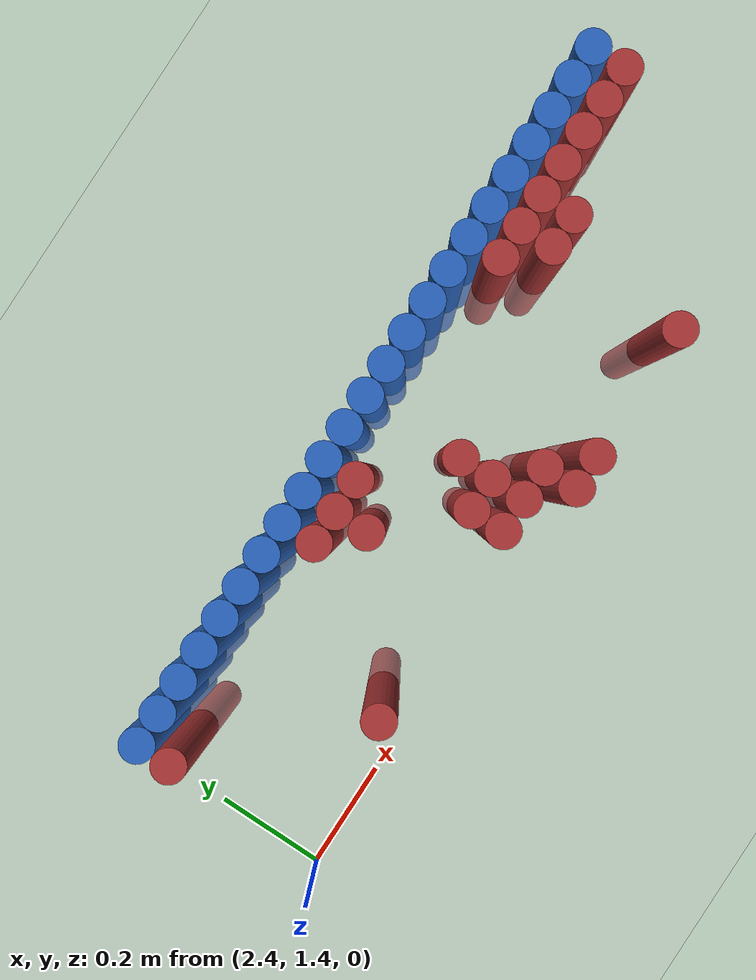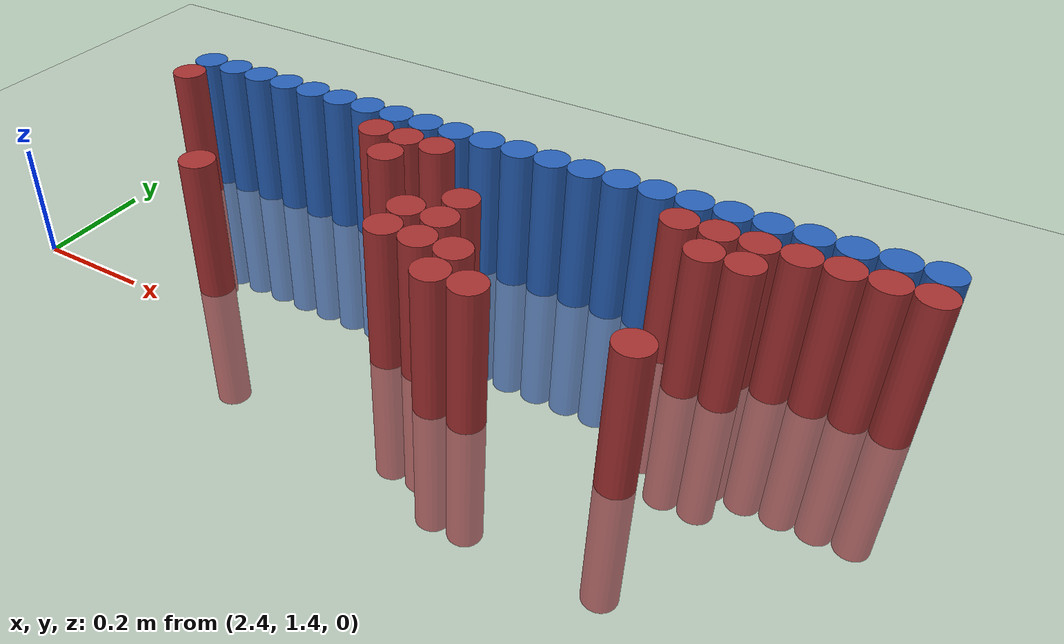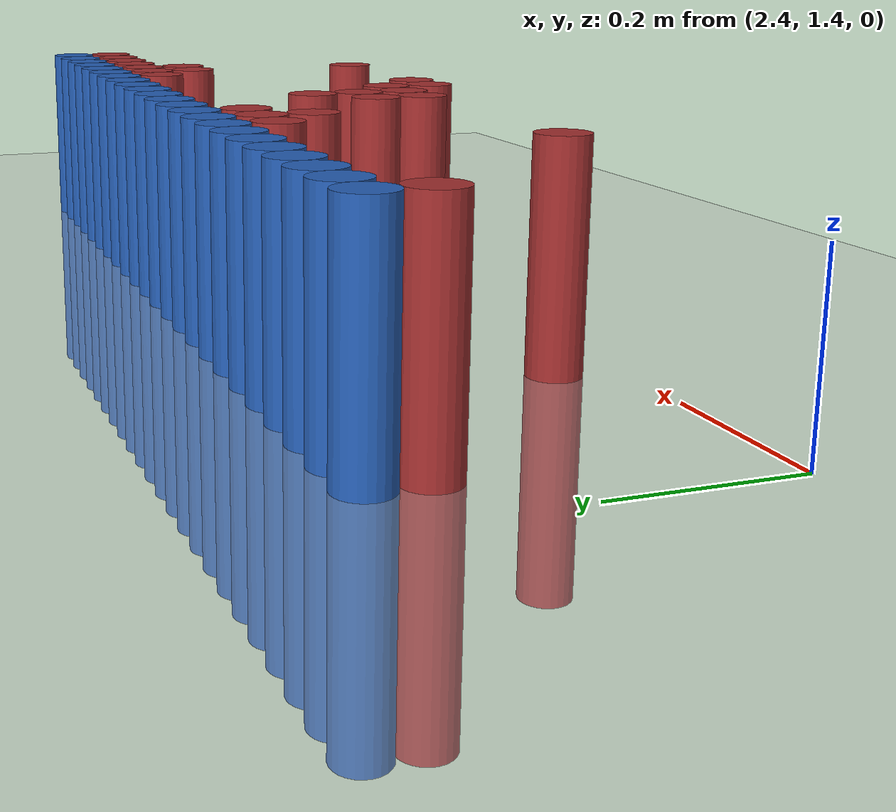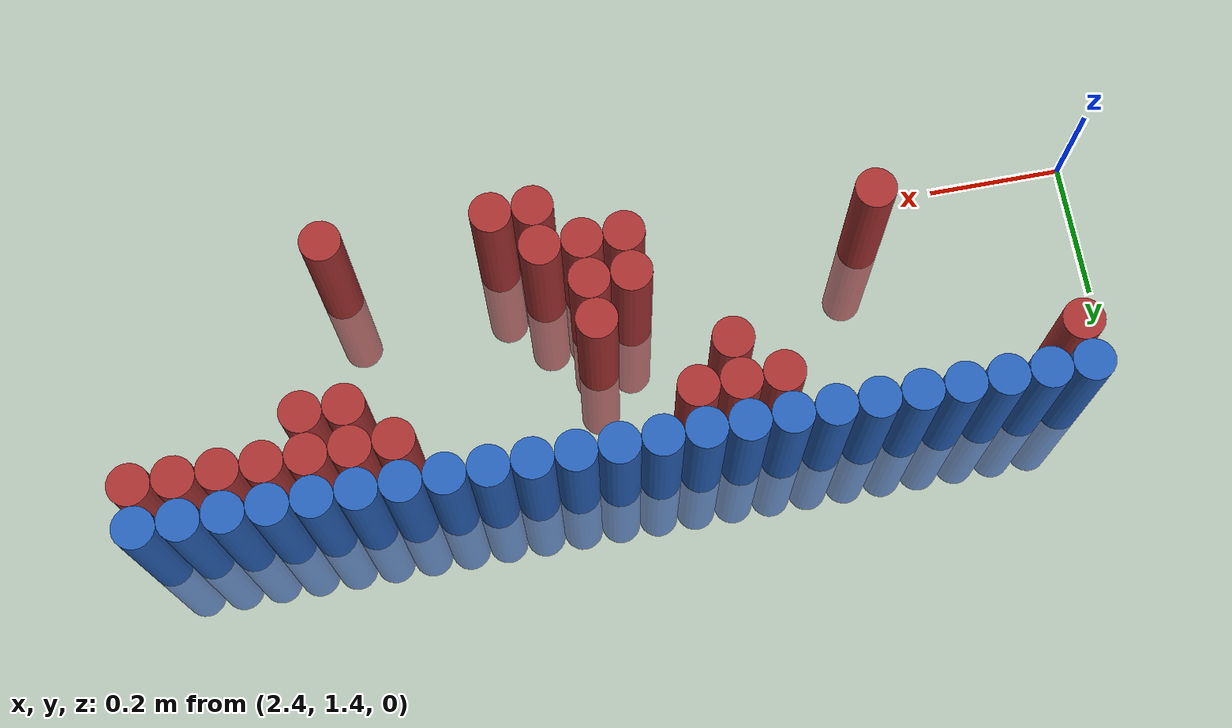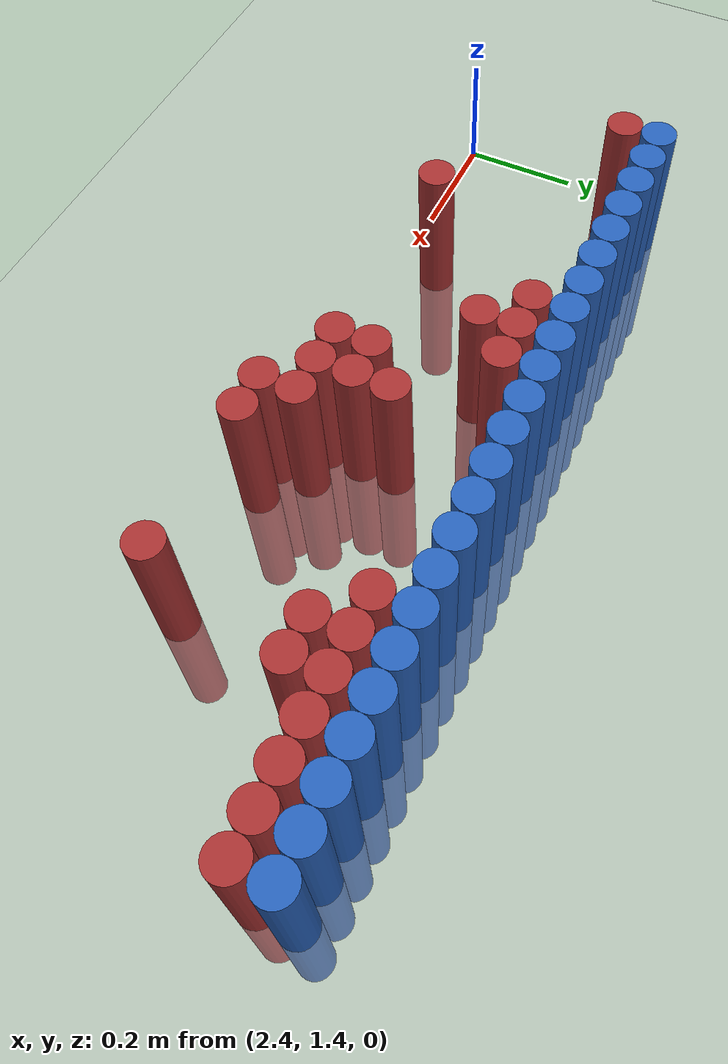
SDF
<sdf version="1.6">
 <world name="default">
  <model name="ground_plane">
   <static>1</static>
   <link name="link">
    <collision name="collision">
     <geometry><plane><normal>0 0 1</normal><size>100 100</size></plane></geometry>
     <surface><friction><ode><mu>100</mu><mu2>50</mu2></ode></friction></surface>
    </collision>
    <visual name="visual">
     <cast_shadows>0</cast_shadows>
     <geometry><plane><normal>0 0 1</normal><size>100 100</size></plane></geometry>
     <material>
      <script><uri>file://media/materials/scripts/gazebo.material</uri><name>Gazebo/Grey</name></script>
     </material>
    </visual>
   </link>
  </model>
  <model name="unit_cylinder_102">
   <static>1</static>
   <pose>2.490000 1.770000 0.000000 0.000000 0.000000 0.000000</pose>
   <link name="link">
    <inertial>
     <mass>1</mass>
     <inertia><ixx>0.145833</ixx><ixy>0</ixy><ixz>0</ixz><iyy>0.145833</iyy><iyz>0</iyz><izz>0.125</izz></inertia>
    </inertial>
    <collision name="collision">
     <geometry><cylinder><radius>0.030000</radius><length>0.5</length></cylinder></geometry>
    </collision>
    <visual name="visual">
     <geometry><cylinder><radius>0.030000</radius><length>0.5</length></cylinder></geometry>
     <material>
      <ambient>0.152000 0.379000 0.720000 1</ambient>
      <diffuse>0.152000 0.379000 0.720000 1</diffuse>
     </material>
     <material>
      <script><name>Gazebo/Grey</name><uri>file://media/materials/scripts/gazebo.material</uri></script>
     </material>
    </visual>
   </link>
  </model>
  <model name="unit_cylinder_103">
   <static>1</static>
   <pose>2.550000 1.770000 0.000000 0.000000 0.000000 0.000000</pose>
   <link name="link">
    <inertial>
     <mass>1</mass>
     <inertia><ixx>0.145833</ixx><ixy>0</ixy><ixz>0</ixz><iyy>0.145833</iyy><iyz>0</iyz><izz>0.125</izz></inertia>
    </inertial>
    <collision name="collision">
     <geometry><cylinder><radius>0.030000</radius><length>0.5</length></cylinder></geometry>
    </collision>
    <visual name="visual">
     <geometry><cylinder><radius>0.030000</radius><length>0.5</length></cylinder></geometry>
     <material>
      <ambient>0.152000 0.379000 0.720000 1</ambient>
      <diffuse>0.152000 0.379000 0.720000 1</diffuse>
     </material>
     <material>
      <script><name>Gazebo/Grey</name><uri>file://media/materials/scripts/gazebo.material</uri></script>
     </material>
    </visual>
   </link>
  </model>
  <model name="unit_cylinder_104">
   <static>1</static>
   <pose>2.610000 1.770000 0.000000 0.000000 0.000000 0.000000</pose>
   <link name="link">
    <inertial>
     <mass>1</mass>
     <inertia><ixx>0.145833</ixx><ixy>0</ixy><ixz>0</ixz><iyy>0.145833</iyy><iyz>0</iyz><izz>0.125</izz></inertia>
    </inertial>
    <collision name="collision">
     <geometry><cylinder><radius>0.030000</radius><length>0.5</length></cylinder></geometry>
    </collision>
    <visual name="visual">
     <geometry><cylinder><radius>0.030000</radius><length>0.5</length></cylinder></geometry>
     <material>
      <ambient>0.152000 0.379000 0.720000 1</ambient>
      <diffuse>0.152000 0.379000 0.720000 1</diffuse>
     </material>
     <material>
      <script><name>Gazebo/Grey</name><uri>file://media/materials/scripts/gazebo.material</uri></script>
     </material>
    </visual>
   </link>
  </model>
  <model name="unit_cylinder_105">
   <static>1</static>
   <pose>2.670000 1.770000 0.000000 0.000000 0.000000 0.000000</pose>
   <link name="link">
    <inertial>
     <mass>1</mass>
     <inertia><ixx>0.145833</ixx><ixy>0</ixy><ixz>0</ixz><iyy>0.145833</iyy><iyz>0</iyz><izz>0.125</izz></inertia>
    </inertial>
    <collision name="collision">
     <geometry><cylinder><radius>0.030000</radius><length>0.5</length></cylinder></geometry>
    </collision>
    <visual name="visual">
     <geometry><cylinder><radius>0.030000</radius><length>0.5</length></cylinder></geometry>
     <material>
      <ambient>0.152000 0.379000 0.720000 1</ambient>
      <diffuse>0.152000 0.379000 0.720000 1</diffuse>
     </material>
     <material>
      <script><name>Gazebo/Grey</name><uri>file://media/materials/scripts/gazebo.material</uri></script>
     </material>
    </visual>
   </link>
  </model>
  <model name="unit_cylinder_106">
   <static>1</static>
   <pose>2.730000 1.770000 0.000000 0.000000 0.000000 0.000000</pose>
   <link name="link">
    <inertial>
     <mass>1</mass>
     <inertia><ixx>0.145833</ixx><ixy>0</ixy><ixz>0</ixz><iyy>0.145833</iyy><iyz>0</iyz><izz>0.125</izz></inertia>
    </inertial>
    <collision name="collision">
     <geometry><cylinder><radius>0.030000</radius><length>0.5</length></cylinder></geometry>
    </collision>
    <visual name="visual">
     <geometry><cylinder><radius>0.030000</radius><length>0.5</length></cylinder></geometry>
     <material>
      <ambient>0.152000 0.379000 0.720000 1</ambient>
      <diffuse>0.152000 0.379000 0.720000 1</diffuse>
     </material>
     <material>
      <script><name>Gazebo/Grey</name><uri>file://media/materials/scripts/gazebo.material</uri></script>
     </material>
    </visual>
   </link>
  </model>
  <model name="unit_cylinder_107">
   <static>1</static>
   <pose>2.790000 1.770000 0.000000 0.000000 0.000000 0.000000</pose>
   <link name="link">
    <inertial>
     <mass>1</mass>
     <inertia><ixx>0.145833</ixx><ixy>0</ixy><ixz>0</ixz><iyy>0.145833</iyy><iyz>0</iyz><izz>0.125</izz></inertia>
    </inertial>
    <collision name="collision">
     <geometry><cylinder><radius>0.030000</radius><length>0.5</length></cylinder></geometry>
    </collision>
    <visual name="visual">
     <geometry><cylinder><radius>0.030000</radius><length>0.5</length></cylinder></geometry>
     <material>
      <ambient>0.152000 0.379000 0.720000 1</ambient>
      <diffuse>0.152000 0.379000 0.720000 1</diffuse>
     </material>
     <material>
      <script><name>Gazebo/Grey</name><uri>file://media/materials/scripts/gazebo.material</uri></script>
     </material>
    </visual>
   </link>
  </model>
  <model name="unit_cylinder_108">
   <static>1</static>
   <pose>2.850000 1.770000 0.000000 0.000000 0.000000 0.000000</pose>
   <link name="link">
    <inertial>
     <mass>1</mass>
     <inertia><ixx>0.145833</ixx><ixy>0</ixy><ixz>0</ixz><iyy>0.145833</iyy><iyz>0</iyz><izz>0.125</izz></inertia>
    </inertial>
    <collision name="collision">
     <geometry><cylinder><radius>0.030000</radius><length>0.5</length></cylinder></geometry>
    </collision>
    <visual name="visual">
     <geometry><cylinder><radius>0.030000</radius><length>0.5</length></cylinder></geometry>
     <material>
      <ambient>0.152000 0.379000 0.720000 1</ambient>
      <diffuse>0.152000 0.379000 0.720000 1</diffuse>
     </material>
     <material>
      <script><name>Gazebo/Grey</name><uri>file://media/materials/scripts/gazebo.material</uri></script>
     </material>
    </visual>
   </link>
  </model>
  <model name="unit_cylinder_109">
   <static>1</static>
   <pose>2.910000 1.770000 0.000000 0.000000 0.000000 0.000000</pose>
   <link name="link">
    <inertial>
     <mass>1</mass>
     <inertia><ixx>0.145833</ixx><ixy>0</ixy><ixz>0</ixz><iyy>0.145833</iyy><iyz>0</iyz><izz>0.125</izz></inertia>
    </inertial>
    <collision name="collision">
     <geometry><cylinder><radius>0.030000</radius><length>0.5</length></cylinder></geometry>
    </collision>
    <visual name="visual">
     <geometry><cylinder><radius>0.030000</radius><length>0.5</length></cylinder></geometry>
     <material>
      <ambient>0.152000 0.379000 0.720000 1</ambient>
      <diffuse>0.152000 0.379000 0.720000 1</diffuse>
     </material>
     <material>
      <script><name>Gazebo/Grey</name><uri>file://media/materials/scripts/gazebo.material</uri></script>
     </material>
    </visual>
   </link>
  </model>
  <model name="unit_cylinder_110">
   <static>1</static>
   <pose>2.970000 1.770000 0.000000 0.000000 0.000000 0.000000</pose>
   <link name="link">
    <inertial>
     <mass>1</mass>
     <inertia><ixx>0.145833</ixx><ixy>0</ixy><ixz>0</ixz><iyy>0.145833</iyy><iyz>0</iyz><izz>0.125</izz></inertia>
    </inertial>
    <collision name="collision">
     <geometry><cylinder><radius>0.030000</radius><length>0.5</length></cylinder></geometry>
    </collision>
    <visual name="visual">
     <geometry><cylinder><radius>0.030000</radius><length>0.5</length></cylinder></geometry>
     <material>
      <ambient>0.152000 0.379000 0.720000 1</ambient>
      <diffuse>0.152000 0.379000 0.720000 1</diffuse>
     </material>
     <material>
      <script><name>Gazebo/Grey</name><uri>file://media/materials/scripts/gazebo.material</uri></script>
     </material>
    </visual>
   </link>
  </model>
  <model name="unit_cylinder_111">
   <static>1</static>
   <pose>3.030000 1.770000 0.000000 0.000000 0.000000 0.000000</pose>
   <link name="link">
    <inertial>
     <mass>1</mass>
     <inertia><ixx>0.145833</ixx><ixy>0</ixy><ixz>0</ixz><iyy>0.145833</iyy><iyz>0</iyz><izz>0.125</izz></inertia>
    </inertial>
    <collision name="collision">
     <geometry><cylinder><radius>0.030000</radius><length>0.5</length></cylinder></geometry>
    </collision>
    <visual name="visual">
     <geometry><cylinder><radius>0.030000</radius><length>0.5</length></cylinder></geometry>
     <material>
      <ambient>0.152000 0.379000 0.720000 1</ambient>
      <diffuse>0.152000 0.379000 0.720000 1</diffuse>
     </material>
     <material>
      <script><name>Gazebo/Grey</name><uri>file://media/materials/scripts/gazebo.material</uri></script>
     </material>
    </visual>
   </link>
  </model>
  <model name="unit_cylinder_112">
   <static>1</static>
   <pose>3.090000 1.770000 0.000000 0.000000 0.000000 0.000000</pose>
   <link name="link">
    <inertial>
     <mass>1</mass>
     <inertia><ixx>0.145833</ixx><ixy>0</ixy><ixz>0</ixz><iyy>0.145833</iyy><iyz>0</iyz><izz>0.125</izz></inertia>
    </inertial>
    <collision name="collision">
     <geometry><cylinder><radius>0.030000</radius><length>0.5</length></cylinder></geometry>
    </collision>
    <visual name="visual">
     <geometry><cylinder><radius>0.030000</radius><length>0.5</length></cylinder></geometry>
     <material>
      <ambient>0.152000 0.379000 0.720000 1</ambient>
      <diffuse>0.152000 0.379000 0.720000 1</diffuse>
     </material>
     <material>
      <script><name>Gazebo/Grey</name><uri>file://media/materials/scripts/gazebo.material</uri></script>
     </material>
    </visual>
   </link>
  </model>
  <model name="unit_cylinder_113">
   <static>1</static>
   <pose>3.150000 1.770000 0.000000 0.000000 0.000000 0.000000</pose>
   <link name="link">
    <inertial>
     <mass>1</mass>
     <inertia><ixx>0.145833</ixx><ixy>0</ixy><ixz>0</ixz><iyy>0.145833</iyy><iyz>0</iyz><izz>0.125</izz></inertia>
    </inertial>
    <collision name="collision">
     <geometry><cylinder><radius>0.030000</radius><length>0.5</length></cylinder></geometry>
    </collision>
    <visual name="visual">
     <geometry><cylinder><radius>0.030000</radius><length>0.5</length></cylinder></geometry>
     <material>
      <ambient>0.152000 0.379000 0.720000 1</ambient>
      <diffuse>0.152000 0.379000 0.720000 1</diffuse>
     </material>
     <material>
      <script><name>Gazebo/Grey</name><uri>file://media/materials/scripts/gazebo.material</uri></script>
     </material>
    </visual>
   </link>
  </model>
  <model name="unit_cylinder_114">
   <static>1</static>
   <pose>3.210000 1.770000 0.000000 0.000000 0.000000 0.000000</pose>
   <link name="link">
    <inertial>
     <mass>1</mass>
     <inertia><ixx>0.145833</ixx><ixy>0</ixy><ixz>0</ixz><iyy>0.145833</iyy><iyz>0</iyz><izz>0.125</izz></inertia>
    </inertial>
    <collision name="collision">
     <geometry><cylinder><radius>0.030000</radius><length>0.5</length></cylinder></geometry>
    </collision>
    <visual name="visual">
     <geometry><cylinder><radius>0.030000</radius><length>0.5</length></cylinder></geometry>
     <material>
      <ambient>0.152000 0.379000 0.720000 1</ambient>
      <diffuse>0.152000 0.379000 0.720000 1</diffuse>
     </material>
     <material>
      <script><name>Gazebo/Grey</name><uri>file://media/materials/scripts/gazebo.material</uri></script>
     </material>
    </visual>
   </link>
  </model>
  <model name="unit_cylinder_115">
   <static>1</static>
   <pose>3.270000 1.770000 0.000000 0.000000 0.000000 0.000000</pose>
   <link name="link">
    <inertial>
     <mass>1</mass>
     <inertia><ixx>0.145833</ixx><ixy>0</ixy><ixz>0</ixz><iyy>0.145833</iyy><iyz>0</iyz><izz>0.125</izz></inertia>
    </inertial>
    <collision name="collision">
     <geometry><cylinder><radius>0.030000</radius><length>0.5</length></cylinder></geometry>
    </collision>
    <visual name="visual">
     <geometry><cylinder><radius>0.030000</radius><length>0.5</length></cylinder></geometry>
     <material>
      <ambient>0.152000 0.379000 0.720000 1</ambient>
      <diffuse>0.152000 0.379000 0.720000 1</diffuse>
     </material>
     <material>
      <script><name>Gazebo/Grey</name><uri>file://media/materials/scripts/gazebo.material</uri></script>
     </material>
    </visual>
   </link>
  </model>
  <model name="unit_cylinder_116">
   <static>1</static>
   <pose>3.330000 1.770000 0.000000 0.000000 0.000000 0.000000</pose>
   <link name="link">
    <inertial>
     <mass>1</mass>
     <inertia><ixx>0.145833</ixx><ixy>0</ixy><ixz>0</ixz><iyy>0.145833</iyy><iyz>0</iyz><izz>0.125</izz></inertia>
    </inertial>
    <collision name="collision">
     <geometry><cylinder><radius>0.030000</radius><length>0.5</length></cylinder></geometry>
    </collision>
    <visual name="visual">
     <geometry><cylinder><radius>0.030000</radius><length>0.5</length></cylinder></geometry>
     <material>
      <ambient>0.152000 0.379000 0.720000 1</ambient>
      <diffuse>0.152000 0.379000 0.720000 1</diffuse>
     </material>
     <material>
      <script><name>Gazebo/Grey</name><uri>file://media/materials/scripts/gazebo.material</uri></script>
     </material>
    </visual>
   </link>
  </model>
  <model name="unit_cylinder_117">
   <static>1</static>
   <pose>3.390000 1.770000 0.000000 0.000000 0.000000 0.000000</pose>
   <link name="link">
    <inertial>
     <mass>1</mass>
     <inertia><ixx>0.145833</ixx><ixy>0</ixy><ixz>0</ixz><iyy>0.145833</iyy><iyz>0</iyz><izz>0.125</izz></inertia>
    </inertial>
    <collision name="collision">
     <geometry><cylinder><radius>0.030000</radius><length>0.5</length></cylinder></geometry>
    </collision>
    <visual name="visual">
     <geometry><cylinder><radius>0.030000</radius><length>0.5</length></cylinder></geometry>
     <material>
      <ambient>0.152000 0.379000 0.720000 1</ambient>
      <diffuse>0.152000 0.379000 0.720000 1</diffuse>
     </material>
     <material>
      <script><name>Gazebo/Grey</name><uri>file://media/materials/scripts/gazebo.material</uri></script>
     </material>
    </visual>
   </link>
  </model>
  <model name="unit_cylinder_118">
   <static>1</static>
   <pose>3.450000 1.770000 0.000000 0.000000 0.000000 0.000000</pose>
   <link name="link">
    <inertial>
     <mass>1</mass>
     <inertia><ixx>0.145833</ixx><ixy>0</ixy><ixz>0</ixz><iyy>0.145833</iyy><iyz>0</iyz><izz>0.125</izz></inertia>
    </inertial>
    <collision name="collision">
     <geometry><cylinder><radius>0.030000</radius><length>0.5</length></cylinder></geometry>
    </collision>
    <visual name="visual">
     <geometry><cylinder><radius>0.030000</radius><length>0.5</length></cylinder></geometry>
     <material>
      <ambient>0.152000 0.379000 0.720000 1</ambient>
      <diffuse>0.152000 0.379000 0.720000 1</diffuse>
     </material>
     <material>
      <script><name>Gazebo/Grey</name><uri>file://media/materials/scripts/gazebo.material</uri></script>
     </material>
    </visual>
   </link>
  </model>
  <model name="unit_cylinder_119">
   <static>1</static>
   <pose>3.510000 1.770000 0.000000 0.000000 0.000000 0.000000</pose>
   <link name="link">
    <inertial>
     <mass>1</mass>
     <inertia><ixx>0.145833</ixx><ixy>0</ixy><ixz>0</ixz><iyy>0.145833</iyy><iyz>0</iyz><izz>0.125</izz></inertia>
    </inertial>
    <collision name="collision">
     <geometry><cylinder><radius>0.030000</radius><length>0.5</length></cylinder></geometry>
    </collision>
    <visual name="visual">
     <geometry><cylinder><radius>0.030000</radius><length>0.5</length></cylinder></geometry>
     <material>
      <ambient>0.152000 0.379000 0.720000 1</ambient>
      <diffuse>0.152000 0.379000 0.720000 1</diffuse>
     </material>
     <material>
      <script><name>Gazebo/Grey</name><uri>file://media/materials/scripts/gazebo.material</uri></script>
     </material>
    </visual>
   </link>
  </model>
  <model name="unit_cylinder_120">
   <static>1</static>
   <pose>3.570000 1.770000 0.000000 0.000000 0.000000 0.000000</pose>
   <link name="link">
    <inertial>
     <mass>1</mass>
     <inertia><ixx>0.145833</ixx><ixy>0</ixy><ixz>0</ixz><iyy>0.145833</iyy><iyz>0</iyz><izz>0.125</izz></inertia>
    </inertial>
    <collision name="collision">
     <geometry><cylinder><radius>0.030000</radius><length>0.5</length></cylinder></geometry>
    </collision>
    <visual name="visual">
     <geometry><cylinder><radius>0.030000</radius><length>0.5</length></cylinder></geometry>
     <material>
      <ambient>0.152000 0.379000 0.720000 1</ambient>
      <diffuse>0.152000 0.379000 0.720000 1</diffuse>
     </material>
     <material>
      <script><name>Gazebo/Grey</name><uri>file://media/materials/scripts/gazebo.material</uri></script>
     </material>
    </visual>
   </link>
  </model>
  <model name="unit_cylinder_121">
   <static>1</static>
   <pose>3.630000 1.770000 0.000000 0.000000 0.000000 0.000000</pose>
   <link name="link">
    <inertial>
     <mass>1</mass>
     <inertia><ixx>0.145833</ixx><ixy>0</ixy><ixz>0</ixz><iyy>0.145833</iyy><iyz>0</iyz><izz>0.125</izz></inertia>
    </inertial>
    <collision name="collision">
     <geometry><cylinder><radius>0.030000</radius><length>0.5</length></cylinder></geometry>
    </collision>
    <visual name="visual">
     <geometry><cylinder><radius>0.030000</radius><length>0.5</length></cylinder></geometry>
     <material>
      <ambient>0.152000 0.379000 0.720000 1</ambient>
      <diffuse>0.152000 0.379000 0.720000 1</diffuse>
     </material>
     <material>
      <script><name>Gazebo/Grey</name><uri>file://media/materials/scripts/gazebo.material</uri></script>
     </material>
    </visual>
   </link>
  </model>
  <model name="unit_cylinder_122">
   <static>1</static>
   <pose>3.690000 1.770000 0.000000 0.000000 0.000000 0.000000</pose>
   <link name="link">
    <inertial>
     <mass>1</mass>
     <inertia><ixx>0.145833</ixx><ixy>0</ixy><ixz>0</ixz><iyy>0.145833</iyy><iyz>0</iyz><izz>0.125</izz></inertia>
    </inertial>
    <collision name="collision">
     <geometry><cylinder><radius>0.030000</radius><length>0.5</length></cylinder></geometry>
    </collision>
    <visual name="visual">
     <geometry><cylinder><radius>0.030000</radius><length>0.5</length></cylinder></geometry>
     <material>
      <ambient>0.152000 0.379000 0.720000 1</ambient>
      <diffuse>0.152000 0.379000 0.720000 1</diffuse>
     </material>
     <material>
      <script><name>Gazebo/Grey</name><uri>file://media/materials/scripts/gazebo.material</uri></script>
     </material>
    </visual>
   </link>
  </model>
  <model name="unit_cylinder_123">
   <static>1</static>
   <pose>3.750000 1.770000 0.000000 0.000000 0.000000 0.000000</pose>
   <link name="link">
    <inertial>
     <mass>1</mass>
     <inertia><ixx>0.145833</ixx><ixy>0</ixy><ixz>0</ixz><iyy>0.145833</iyy><iyz>0</iyz><izz>0.125</izz></inertia>
    </inertial>
    <collision name="collision">
     <geometry><cylinder><radius>0.030000</radius><length>0.5</length></cylinder></geometry>
    </collision>
    <visual name="visual">
     <geometry><cylinder><radius>0.030000</radius><length>0.5</length></cylinder></geometry>
     <material>
      <ambient>0.152000 0.379000 0.720000 1</ambient>
      <diffuse>0.152000 0.379000 0.720000 1</diffuse>
     </material>
     <material>
      <script><name>Gazebo/Grey</name><uri>file://media/materials/scripts/gazebo.material</uri></script>
     </material>
    </visual>
   </link>
  </model>
  <model name="unit_cylinder_124">
   <static>1</static>
   <pose>3.810000 1.770000 0.000000 0.000000 0.000000 0.000000</pose>
   <link name="link">
    <inertial>
     <mass>1</mass>
     <inertia><ixx>0.145833</ixx><ixy>0</ixy><ixz>0</ixz><iyy>0.145833</iyy><iyz>0</iyz><izz>0.125</izz></inertia>
    </inertial>
    <collision name="collision">
     <geometry><cylinder><radius>0.030000</radius><length>0.5</length></cylinder></geometry>
    </collision>
    <visual name="visual">
     <geometry><cylinder><radius>0.030000</radius><length>0.5</length></cylinder></geometry>
     <material>
      <ambient>0.152000 0.379000 0.720000 1</ambient>
      <diffuse>0.152000 0.379000 0.720000 1</diffuse>
     </material>
     <material>
      <script><name>Gazebo/Grey</name><uri>file://media/materials/scripts/gazebo.material</uri></script>
     </material>
    </visual>
   </link>
  </model>
  <model name="unit_cylinder_128">
   <static>1</static>
   <pose>2.490000 1.710000 0.000000 0.000000 0.000000 0.000000</pose>
   <link name="link">
    <inertial>
     <mass>1</mass>
     <inertia><ixx>0.145833</ixx><ixy>0</ixy><ixz>0</ixz><iyy>0.145833</iyy><iyz>0</iyz><izz>0.125</izz></inertia>
    </inertial>
    <collision name="collision">
     <geometry><cylinder><radius>0.030000</radius><length>0.5</length></cylinder></geometry>
    </collision>
    <visual name="visual">
     <geometry><cylinder><radius>0.030000</radius><length>0.5</length></cylinder></geometry>
     <material>
      <ambient>0.648000 0.192000 0.192000 1</ambient>
      <diffuse>0.648000 0.192000 0.192000 1</diffuse>
     </material>
     <material>
      <script><name>Gazebo/Grey</name><uri>file://media/materials/scripts/gazebo.material</uri></script>
     </material>
    </visual>
   </link>
  </model>
  <model name="unit_cylinder_129">
   <static>1</static>
   <pose>2.910000 1.710000 0.000000 0.000000 0.000000 0.000000</pose>
   <link name="link">
    <inertial>
     <mass>1</mass>
     <inertia><ixx>0.145833</ixx><ixy>0</ixy><ixz>0</ixz><iyy>0.145833</iyy><iyz>0</iyz><izz>0.125</izz></inertia>
    </inertial>
    <collision name="collision">
     <geometry><cylinder><radius>0.030000</radius><length>0.5</length></cylinder></geometry>
    </collision>
    <visual name="visual">
     <geometry><cylinder><radius>0.030000</radius><length>0.5</length></cylinder></geometry>
     <material>
      <ambient>0.648000 0.192000 0.192000 1</ambient>
      <diffuse>0.648000 0.192000 0.192000 1</diffuse>
     </material>
     <material>
      <script><name>Gazebo/Grey</name><uri>file://media/materials/scripts/gazebo.material</uri></script>
     </material>
    </visual>
   </link>
  </model>
  <model name="unit_cylinder_130">
   <static>1</static>
   <pose>2.970000 1.710000 0.000000 0.000000 0.000000 0.000000</pose>
   <link name="link">
    <inertial>
     <mass>1</mass>
     <inertia><ixx>0.145833</ixx><ixy>0</ixy><ixz>0</ixz><iyy>0.145833</iyy><iyz>0</iyz><izz>0.125</izz></inertia>
    </inertial>
    <collision name="collision">
     <geometry><cylinder><radius>0.030000</radius><length>0.5</length></cylinder></geometry>
    </collision>
    <visual name="visual">
     <geometry><cylinder><radius>0.030000</radius><length>0.5</length></cylinder></geometry>
     <material>
      <ambient>0.648000 0.192000 0.192000 1</ambient>
      <diffuse>0.648000 0.192000 0.192000 1</diffuse>
     </material>
     <material>
      <script><name>Gazebo/Grey</name><uri>file://media/materials/scripts/gazebo.material</uri></script>
     </material>
    </visual>
   </link>
  </model>
  <model name="unit_cylinder_131">
   <static>1</static>
   <pose>3.030000 1.710000 0.000000 0.000000 0.000000 0.000000</pose>
   <link name="link">
    <inertial>
     <mass>1</mass>
     <inertia><ixx>0.145833</ixx><ixy>0</ixy><ixz>0</ixz><iyy>0.145833</iyy><iyz>0</iyz><izz>0.125</izz></inertia>
    </inertial>
    <collision name="collision">
     <geometry><cylinder><radius>0.030000</radius><length>0.5</length></cylinder></geometry>
    </collision>
    <visual name="visual">
     <geometry><cylinder><radius>0.030000</radius><length>0.5</length></cylinder></geometry>
     <material>
      <ambient>0.648000 0.192000 0.192000 1</ambient>
      <diffuse>0.648000 0.192000 0.192000 1</diffuse>
     </material>
     <material>
      <script><name>Gazebo/Grey</name><uri>file://media/materials/scripts/gazebo.material</uri></script>
     </material>
    </visual>
   </link>
  </model>
  <model name="unit_cylinder_132">
   <static>1</static>
   <pose>3.450000 1.710000 0.000000 0.000000 0.000000 0.000000</pose>
   <link name="link">
    <inertial>
     <mass>1</mass>
     <inertia><ixx>0.145833</ixx><ixy>0</ixy><ixz>0</ixz><iyy>0.145833</iyy><iyz>0</iyz><izz>0.125</izz></inertia>
    </inertial>
    <collision name="collision">
     <geometry><cylinder><radius>0.030000</radius><length>0.5</length></cylinder></geometry>
    </collision>
    <visual name="visual">
     <geometry><cylinder><radius>0.030000</radius><length>0.5</length></cylinder></geometry>
     <material>
      <ambient>0.648000 0.192000 0.192000 1</ambient>
      <diffuse>0.648000 0.192000 0.192000 1</diffuse>
     </material>
     <material>
      <script><name>Gazebo/Grey</name><uri>file://media/materials/scripts/gazebo.material</uri></script>
     </material>
    </visual>
   </link>
  </model>
  <model name="unit_cylinder_133">
   <static>1</static>
   <pose>3.510000 1.710000 0.000000 0.000000 0.000000 0.000000</pose>
   <link name="link">
    <inertial>
     <mass>1</mass>
     <inertia><ixx>0.145833</ixx><ixy>0</ixy><ixz>0</ixz><iyy>0.145833</iyy><iyz>0</iyz><izz>0.125</izz></inertia>
    </inertial>
    <collision name="collision">
     <geometry><cylinder><radius>0.030000</radius><length>0.5</length></cylinder></geometry>
    </collision>
    <visual name="visual">
     <geometry><cylinder><radius>0.030000</radius><length>0.5</length></cylinder></geometry>
     <material>
      <ambient>0.648000 0.192000 0.192000 1</ambient>
      <diffuse>0.648000 0.192000 0.192000 1</diffuse>
     </material>
     <material>
      <script><name>Gazebo/Grey</name><uri>file://media/materials/scripts/gazebo.material</uri></script>
     </material>
    </visual>
   </link>
  </model>
  <model name="unit_cylinder_134">
   <static>1</static>
   <pose>3.570000 1.710000 0.000000 0.000000 0.000000 0.000000</pose>
   <link name="link">
    <inertial>
     <mass>1</mass>
     <inertia><ixx>0.145833</ixx><ixy>0</ixy><ixz>0</ixz><iyy>0.145833</iyy><iyz>0</iyz><izz>0.125</izz></inertia>
    </inertial>
    <collision name="collision">
     <geometry><cylinder><radius>0.030000</radius><length>0.5</length></cylinder></geometry>
    </collision>
    <visual name="visual">
     <geometry><cylinder><radius>0.030000</radius><length>0.5</length></cylinder></geometry>
     <material>
      <ambient>0.648000 0.192000 0.192000 1</ambient>
      <diffuse>0.648000 0.192000 0.192000 1</diffuse>
     </material>
     <material>
      <script><name>Gazebo/Grey</name><uri>file://media/materials/scripts/gazebo.material</uri></script>
     </material>
    </visual>
   </link>
  </model>
  <model name="unit_cylinder_135">
   <static>1</static>
   <pose>3.630000 1.710000 0.000000 0.000000 0.000000 0.000000</pose>
   <link name="link">
    <inertial>
     <mass>1</mass>
     <inertia><ixx>0.145833</ixx><ixy>0</ixy><ixz>0</ixz><iyy>0.145833</iyy><iyz>0</iyz><izz>0.125</izz></inertia>
    </inertial>
    <collision name="collision">
     <geometry><cylinder><radius>0.030000</radius><length>0.5</length></cylinder></geometry>
    </collision>
    <visual name="visual">
     <geometry><cylinder><radius>0.030000</radius><length>0.5</length></cylinder></geometry>
     <material>
      <ambient>0.648000 0.192000 0.192000 1</ambient>
      <diffuse>0.648000 0.192000 0.192000 1</diffuse>
     </material>
     <material>
      <script><name>Gazebo/Grey</name><uri>file://media/materials/scripts/gazebo.material</uri></script>
     </material>
    </visual>
   </link>
  </model>
  <model name="unit_cylinder_136">
   <static>1</static>
   <pose>3.690000 1.710000 0.000000 0.000000 0.000000 0.000000</pose>
   <link name="link">
    <inertial>
     <mass>1</mass>
     <inertia><ixx>0.145833</ixx><ixy>0</ixy><ixz>0</ixz><iyy>0.145833</iyy><iyz>0</iyz><izz>0.125</izz></inertia>
    </inertial>
    <collision name="collision">
     <geometry><cylinder><radius>0.030000</radius><length>0.5</length></cylinder></geometry>
    </collision>
    <visual name="visual">
     <geometry><cylinder><radius>0.030000</radius><length>0.5</length></cylinder></geometry>
     <material>
      <ambient>0.648000 0.192000 0.192000 1</ambient>
      <diffuse>0.648000 0.192000 0.192000 1</diffuse>
     </material>
     <material>
      <script><name>Gazebo/Grey</name><uri>file://media/materials/scripts/gazebo.material</uri></script>
     </material>
    </visual>
   </link>
  </model>
  <model name="unit_cylinder_137">
   <static>1</static>
   <pose>3.750000 1.710000 0.000000 0.000000 0.000000 0.000000</pose>
   <link name="link">
    <inertial>
     <mass>1</mass>
     <inertia><ixx>0.145833</ixx><ixy>0</ixy><ixz>0</ixz><iyy>0.145833</iyy><iyz>0</iyz><izz>0.125</izz></inertia>
    </inertial>
    <collision name="collision">
     <geometry><cylinder><radius>0.030000</radius><length>0.5</length></cylinder></geometry>
    </collision>
    <visual name="visual">
     <geometry><cylinder><radius>0.030000</radius><length>0.5</length></cylinder></geometry>
     <material>
      <ambient>0.648000 0.192000 0.192000 1</ambient>
      <diffuse>0.648000 0.192000 0.192000 1</diffuse>
     </material>
     <material>
      <script><name>Gazebo/Grey</name><uri>file://media/materials/scripts/gazebo.material</uri></script>
     </material>
    </visual>
   </link>
  </model>
  <model name="unit_cylinder_138">
   <static>1</static>
   <pose>3.810000 1.710000 0.000000 0.000000 0.000000 0.000000</pose>
   <link name="link">
    <inertial>
     <mass>1</mass>
     <inertia><ixx>0.145833</ixx><ixy>0</ixy><ixz>0</ixz><iyy>0.145833</iyy><iyz>0</iyz><izz>0.125</izz></inertia>
    </inertial>
    <collision name="collision">
     <geometry><cylinder><radius>0.030000</radius><length>0.5</length></cylinder></geometry>
    </collision>
    <visual name="visual">
     <geometry><cylinder><radius>0.030000</radius><length>0.5</length></cylinder></geometry>
     <material>
      <ambient>0.648000 0.192000 0.192000 1</ambient>
      <diffuse>0.648000 0.192000 0.192000 1</diffuse>
     </material>
     <material>
      <script><name>Gazebo/Grey</name><uri>file://media/materials/scripts/gazebo.material</uri></script>
     </material>
    </visual>
   </link>
  </model>
  <model name="unit_cylinder_141">
   <static>1</static>
   <pose>2.970000 1.650000 0.000000 0.000000 0.000000 0.000000</pose>
   <link name="link">
    <inertial>
     <mass>1</mass>
     <inertia><ixx>0.145833</ixx><ixy>0</ixy><ixz>0</ixz><iyy>0.145833</iyy><iyz>0</iyz><izz>0.125</izz></inertia>
    </inertial>
    <collision name="collision">
     <geometry><cylinder><radius>0.030000</radius><length>0.5</length></cylinder></geometry>
    </collision>
    <visual name="visual">
     <geometry><cylinder><radius>0.030000</radius><length>0.5</length></cylinder></geometry>
     <material>
      <ambient>0.648000 0.192000 0.192000 1</ambient>
      <diffuse>0.648000 0.192000 0.192000 1</diffuse>
     </material>
     <material>
      <script><name>Gazebo/Grey</name><uri>file://media/materials/scripts/gazebo.material</uri></script>
     </material>
    </visual>
   </link>
  </model>
  <model name="unit_cylinder_142">
   <static>1</static>
   <pose>3.510000 1.650000 0.000000 0.000000 0.000000 0.000000</pose>
   <link name="link">
    <inertial>
     <mass>1</mass>
     <inertia><ixx>0.145833</ixx><ixy>0</ixy><ixz>0</ixz><iyy>0.145833</iyy><iyz>0</iyz><izz>0.125</izz></inertia>
    </inertial>
    <collision name="collision">
     <geometry><cylinder><radius>0.030000</radius><length>0.5</length></cylinder></geometry>
    </collision>
    <visual name="visual">
     <geometry><cylinder><radius>0.030000</radius><length>0.5</length></cylinder></geometry>
     <material>
      <ambient>0.648000 0.192000 0.192000 1</ambient>
      <diffuse>0.648000 0.192000 0.192000 1</diffuse>
     </material>
     <material>
      <script><name>Gazebo/Grey</name><uri>file://media/materials/scripts/gazebo.material</uri></script>
     </material>
    </visual>
   </link>
  </model>
  <model name="unit_cylinder_143">
   <static>1</static>
   <pose>3.570000 1.650000 0.000000 0.000000 0.000000 0.000000</pose>
   <link name="link">
    <inertial>
     <mass>1</mass>
     <inertia><ixx>0.145833</ixx><ixy>0</ixy><ixz>0</ixz><iyy>0.145833</iyy><iyz>0</iyz><izz>0.125</izz></inertia>
    </inertial>
    <collision name="collision">
     <geometry><cylinder><radius>0.030000</radius><length>0.5</length></cylinder></geometry>
    </collision>
    <visual name="visual">
     <geometry><cylinder><radius>0.030000</radius><length>0.5</length></cylinder></geometry>
     <material>
      <ambient>0.648000 0.192000 0.192000 1</ambient>
      <diffuse>0.648000 0.192000 0.192000 1</diffuse>
     </material>
     <material>
      <script><name>Gazebo/Grey</name><uri>file://media/materials/scripts/gazebo.material</uri></script>
     </material>
    </visual>
   </link>
  </model>
  <model name="unit_cylinder_146">
   <static>1</static>
   <pose>3.150000 1.590000 0.000000 0.000000 0.000000 0.000000</pose>
   <link name="link">
    <inertial>
     <mass>1</mass>
     <inertia><ixx>0.145833</ixx><ixy>0</ixy><ixz>0</ixz><iyy>0.145833</iyy><iyz>0</iyz><izz>0.125</izz></inertia>
    </inertial>
    <collision name="collision">
     <geometry><cylinder><radius>0.030000</radius><length>0.5</length></cylinder></geometry>
    </collision>
    <visual name="visual">
     <geometry><cylinder><radius>0.030000</radius><length>0.5</length></cylinder></geometry>
     <material>
      <ambient>0.648000 0.192000 0.192000 1</ambient>
      <diffuse>0.648000 0.192000 0.192000 1</diffuse>
     </material>
     <material>
      <script><name>Gazebo/Grey</name><uri>file://media/materials/scripts/gazebo.material</uri></script>
     </material>
    </visual>
   </link>
  </model>
  <model name="unit_cylinder_148">
   <static>1</static>
   <pose>3.090000 1.530000 0.000000 0.000000 0.000000 0.000000</pose>
   <link name="link">
    <inertial>
     <mass>1</mass>
     <inertia><ixx>0.145833</ixx><ixy>0</ixy><ixz>0</ixz><iyy>0.145833</iyy><iyz>0</iyz><izz>0.125</izz></inertia>
    </inertial>
    <collision name="collision">
     <geometry><cylinder><radius>0.030000</radius><length>0.5</length></cylinder></geometry>
    </collision>
    <visual name="visual">
     <geometry><cylinder><radius>0.030000</radius><length>0.5</length></cylinder></geometry>
     <material>
      <ambient>0.648000 0.192000 0.192000 1</ambient>
      <diffuse>0.648000 0.192000 0.192000 1</diffuse>
     </material>
     <material>
      <script><name>Gazebo/Grey</name><uri>file://media/materials/scripts/gazebo.material</uri></script>
     </material>
    </visual>
   </link>
  </model>
  <model name="unit_cylinder_149">
   <static>1</static>
   <pose>3.150000 1.530000 0.000000 0.000000 0.000000 0.000000</pose>
   <link name="link">
    <inertial>
     <mass>1</mass>
     <inertia><ixx>0.145833</ixx><ixy>0</ixy><ixz>0</ixz><iyy>0.145833</iyy><iyz>0</iyz><izz>0.125</izz></inertia>
    </inertial>
    <collision name="collision">
     <geometry><cylinder><radius>0.030000</radius><length>0.5</length></cylinder></geometry>
    </collision>
    <visual name="visual">
     <geometry><cylinder><radius>0.030000</radius><length>0.5</length></cylinder></geometry>
     <material>
      <ambient>0.648000 0.192000 0.192000 1</ambient>
      <diffuse>0.648000 0.192000 0.192000 1</diffuse>
     </material>
     <material>
      <script><name>Gazebo/Grey</name><uri>file://media/materials/scripts/gazebo.material</uri></script>
     </material>
    </visual>
   </link>
  </model>
  <model name="unit_cylinder_152">
   <static>1</static>
   <pose>2.730000 1.470000 0.000000 0.000000 0.000000 0.000000</pose>
   <link name="link">
    <inertial>
     <mass>1</mass>
     <inertia><ixx>0.145833</ixx><ixy>0</ixy><ixz>0</ixz><iyy>0.145833</iyy><iyz>0</iyz><izz>0.125</izz></inertia>
    </inertial>
    <collision name="collision">
     <geometry><cylinder><radius>0.030000</radius><length>0.5</length></cylinder></geometry>
    </collision>
    <visual name="visual">
     <geometry><cylinder><radius>0.030000</radius><length>0.5</length></cylinder></geometry>
     <material>
      <ambient>0.648000 0.192000 0.192000 1</ambient>
      <diffuse>0.648000 0.192000 0.192000 1</diffuse>
     </material>
     <material>
      <script><name>Gazebo/Grey</name><uri>file://media/materials/scripts/gazebo.material</uri></script>
     </material>
    </visual>
   </link>
  </model>
  <model name="unit_cylinder_153">
   <static>1</static>
   <pose>3.090000 1.470000 0.000000 0.000000 0.000000 0.000000</pose>
   <link name="link">
    <inertial>
     <mass>1</mass>
     <inertia><ixx>0.145833</ixx><ixy>0</ixy><ixz>0</ixz><iyy>0.145833</iyy><iyz>0</iyz><izz>0.125</izz></inertia>
    </inertial>
    <collision name="collision">
     <geometry><cylinder><radius>0.030000</radius><length>0.5</length></cylinder></geometry>
    </collision>
    <visual name="visual">
     <geometry><cylinder><radius>0.030000</radius><length>0.5</length></cylinder></geometry>
     <material>
      <ambient>0.648000 0.192000 0.192000 1</ambient>
      <diffuse>0.648000 0.192000 0.192000 1</diffuse>
     </material>
     <material>
      <script><name>Gazebo/Grey</name><uri>file://media/materials/scripts/gazebo.material</uri></script>
     </material>
    </visual>
   </link>
  </model>
  <model name="unit_cylinder_154">
   <static>1</static>
   <pose>3.150000 1.470000 0.000000 0.000000 0.000000 0.000000</pose>
   <link name="link">
    <inertial>
     <mass>1</mass>
     <inertia><ixx>0.145833</ixx><ixy>0</ixy><ixz>0</ixz><iyy>0.145833</iyy><iyz>0</iyz><izz>0.125</izz></inertia>
    </inertial>
    <collision name="collision">
     <geometry><cylinder><radius>0.030000</radius><length>0.5</length></cylinder></geometry>
    </collision>
    <visual name="visual">
     <geometry><cylinder><radius>0.030000</radius><length>0.5</length></cylinder></geometry>
     <material>
      <ambient>0.648000 0.192000 0.192000 1</ambient>
      <diffuse>0.648000 0.192000 0.192000 1</diffuse>
     </material>
     <material>
      <script><name>Gazebo/Grey</name><uri>file://media/materials/scripts/gazebo.material</uri></script>
     </material>
    </visual>
   </link>
  </model>
  <model name="unit_cylinder_155">
   <static>1</static>
   <pose>3.210000 1.470000 0.000000 0.000000 0.000000 0.000000</pose>
   <link name="link">
    <inertial>
     <mass>1</mass>
     <inertia><ixx>0.145833</ixx><ixy>0</ixy><ixz>0</ixz><iyy>0.145833</iyy><iyz>0</iyz><izz>0.125</izz></inertia>
    </inertial>
    <collision name="collision">
     <geometry><cylinder><radius>0.030000</radius><length>0.5</length></cylinder></geometry>
    </collision>
    <visual name="visual">
     <geometry><cylinder><radius>0.030000</radius><length>0.5</length></cylinder></geometry>
     <material>
      <ambient>0.648000 0.192000 0.192000 1</ambient>
      <diffuse>0.648000 0.192000 0.192000 1</diffuse>
     </material>
     <material>
      <script><name>Gazebo/Grey</name><uri>file://media/materials/scripts/gazebo.material</uri></script>
     </material>
    </visual>
   </link>
  </model>
  <model name="unit_cylinder_161">
   <static>1</static>
   <pose>3.210000 1.410000 0.000000 0.000000 0.000000 0.000000</pose>
   <link name="link">
    <inertial>
     <mass>1</mass>
     <inertia><ixx>0.145833</ixx><ixy>0</ixy><ixz>0</ixz><iyy>0.145833</iyy><iyz>0</iyz><izz>0.125</izz></inertia>
    </inertial>
    <collision name="collision">
     <geometry><cylinder><radius>0.030000</radius><length>0.5</length></cylinder></geometry>
    </collision>
    <visual name="visual">
     <geometry><cylinder><radius>0.030000</radius><length>0.5</length></cylinder></geometry>
     <material>
      <ambient>0.648000 0.192000 0.192000 1</ambient>
      <diffuse>0.648000 0.192000 0.192000 1</diffuse>
     </material>
     <material>
      <script><name>Gazebo/Grey</name><uri>file://media/materials/scripts/gazebo.material</uri></script>
     </material>
    </visual>
   </link>
  </model>
  <model name="unit_cylinder_162">
   <static>1</static>
   <pose>3.270000 1.410000 0.000000 0.000000 0.000000 0.000000</pose>
   <link name="link">
    <inertial>
     <mass>1</mass>
     <inertia><ixx>0.145833</ixx><ixy>0</ixy><ixz>0</ixz><iyy>0.145833</iyy><iyz>0</iyz><izz>0.125</izz></inertia>
    </inertial>
    <collision name="collision">
     <geometry><cylinder><radius>0.030000</radius><length>0.5</length></cylinder></geometry>
    </collision>
    <visual name="visual">
     <geometry><cylinder><radius>0.030000</radius><length>0.5</length></cylinder></geometry>
     <material>
      <ambient>0.648000 0.192000 0.192000 1</ambient>
      <diffuse>0.648000 0.192000 0.192000 1</diffuse>
     </material>
     <material>
      <script><name>Gazebo/Grey</name><uri>file://media/materials/scripts/gazebo.material</uri></script>
     </material>
    </visual>
   </link>
  </model>
  <model name="unit_cylinder_163">
   <static>1</static>
   <pose>3.510000 1.410000 0.000000 0.000000 0.000000 0.000000</pose>
   <link name="link">
    <inertial>
     <mass>1</mass>
     <inertia><ixx>0.145833</ixx><ixy>0</ixy><ixz>0</ixz><iyy>0.145833</iyy><iyz>0</iyz><izz>0.125</izz></inertia>
    </inertial>
    <collision name="collision">
     <geometry><cylinder><radius>0.030000</radius><length>0.5</length></cylinder></geometry>
    </collision>
    <visual name="visual">
     <geometry><cylinder><radius>0.030000</radius><length>0.5</length></cylinder></geometry>
     <material>
      <ambient>0.648000 0.192000 0.192000 1</ambient>
      <diffuse>0.648000 0.192000 0.192000 1</diffuse>
     </material>
     <material>
      <script><name>Gazebo/Grey</name><uri>file://media/materials/scripts/gazebo.material</uri></script>
     </material>
    </visual>
   </link>
  </model>
 </world>
</sdf>
